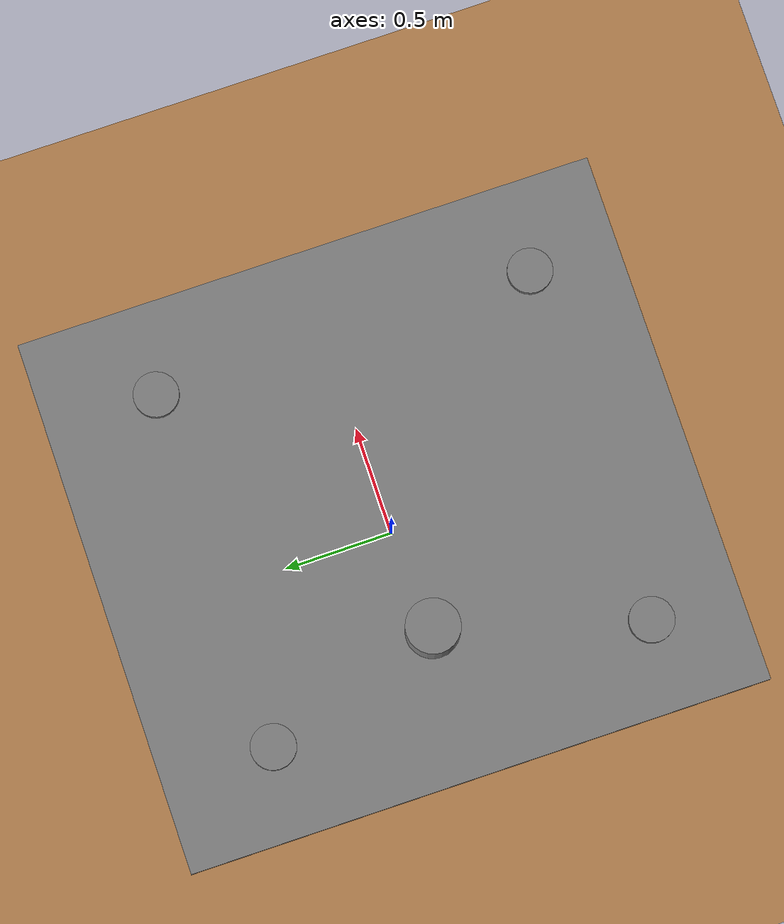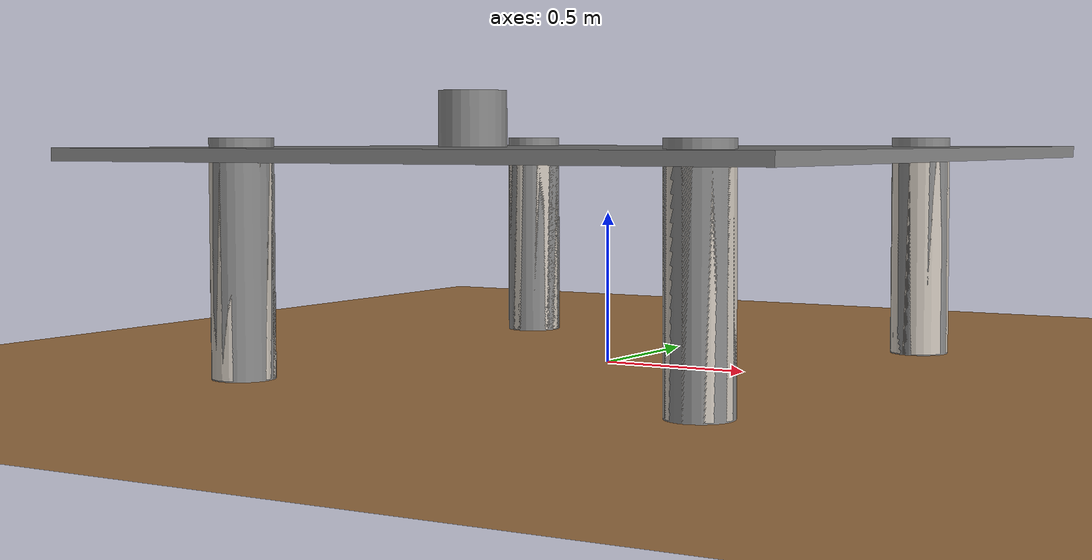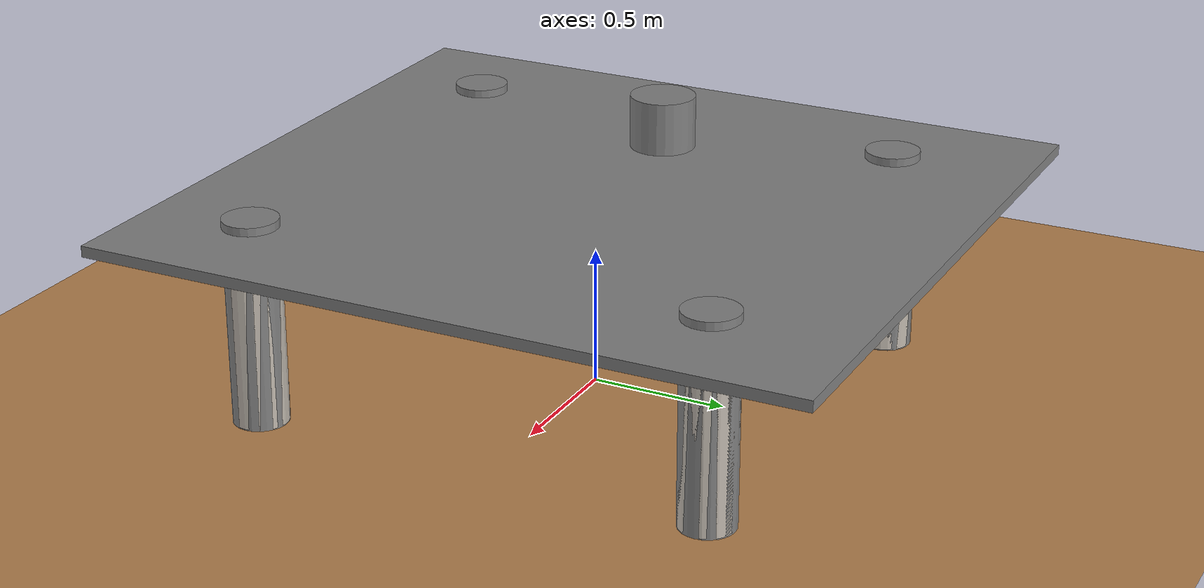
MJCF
<mujoco model="table_arena">
  <asset>
    <texture builtin="gradient" height="256" rgb1=".9 .9 1." rgb2=".2 .3 .4" type="skybox" width="256"/>
    <texture builtin="checker" height="512" name="texplane" rgb1=".2 .3 .4" rgb2=".1 0.15 0.2" type="2d" width="512"/>
    <texture file="../textures/light-wood.png" type="2d" name="tex-light-wood"/>
    <texture file="../textures/light-aluminum.png" type="2d" name="light-aluminum"/>
    <texture file="../textures/white-marble.png" type="2d" name="white-texture"/>
    <texture file="../textures/metal.png" type="2d" name="tex-dark-wood"/>
    <material name="light-wood" reflectance="0.5" texrepeat="15 15" texture="tex-light-wood" texuniform="true"/>
    <material name="aluminum" reflectance="1" texrepeat="15 15" texture="light-aluminum" texuniform="true"/>
    <material name="marble" reflectance="0.5" texrepeat="15 15" texture="white-texture" texuniform="true"/>
    <material name="metal" reflectance="0.5" texrepeat="5 5" texture="tex-dark-wood" texuniform="true"/>
    <material name="floorplane" reflectance="0.5" texrepeat="1 1" texture="tex-light-wood" texuniform="true"/>
  </asset>
  <worldbody>
    <geom condim="3" material="floorplane" name="floor" pos="0 0 0" size="3 3.2 .125" type="plane"/>
    <body name="table" pos="0 0 0.7">
      <geom pos="0 0 0" size="1.2, 1.3, 0.02" type="box" friction="1 0.005 0.0001" name="table_collision"/>
      <geom pos="0 0 0" material="marble" size="1.2, 1.3, 0.02" type="box" conaffinity="0" contype="0" group="1" name="table_view"/>
    </body>
    <body name="basecylinder" pos="0 0 0">
      <geom pos="-0.545 0 0.805" size="0.12 0.11" type="cylinder" friction="1 0.005 0.0001" name="basecylinder_collision"/>
      <geom pos="-0.545 0 0.805" material="marble" size="0.12 0.11" type="cylinder" conaffinity="0" contype="0" group="1"/>
    </body>
    <body name="table_legs" pos="0 0 0">
      <geom pos="-0.8 0.8 0.35" size="0.1  0.4" type="cylinder" friction="1 0.005 0.0001" name="leg1_collision"/>
      <geom pos="-0.8 0.8 0.35" material="metal" size="0.1 0.35" type="cylinder" conaffinity="0" contype="0" group="1" name="leg1"/>
      <geom pos="0.8 0.8 0.35" size="0.1 0.4" type="cylinder" friction="1 0.005 0.0001" name="leg2_collision"/>
      <geom pos="0.8 0.8 0.35" material="metal" size="0.1  0.35" type="cylinder" conaffinity="0" contype="0" group="1" name="leg2"/>
      <geom pos="-0.8 -0.9 0.35" size="0.1  0.4" type="cylinder" friction="1 0.005 0.0001" name="leg3_collision"/>
      <geom pos="-0.8 -0.9 0.35" material="metal" size="0.1  0.35" type="cylinder" conaffinity="0" contype="0" group="1" name="leg3"/>
      <geom pos="0.8 -0.9 0.35" size="0.1  0.4" type="cylinder" friction="1 0.005 0.0001" name="leg4_collision"/>
      <geom pos="0.8 -0.9 0.35" material="metal" size="0.1  0.35" type="cylinder" conaffinity="0" contype="0" group="1" name="leg4"/>
    </body>
    <light diffuse=".8 .8 .8" dir="0 -.15 -1" directional="false" pos="1 1.5 4.0" specular="0.3 0.3 0.3" castshadow="false"/>
    <light diffuse=".8 .8 .8" dir="0 -.15 -1" directional="false" pos="-2. -0.5 4.0" specular="0.3 0.3 0.3" castshadow="false"/>
    <light diffuse=".8 .8 .8" dir="0 -.15 -1" directional="false" pos="-2. 1.5 4.0" specular="0.3 0.3 0.3" castshadow="false"/>
    <light diffuse=".8 .8 .8" dir="0 -.15 -1" directional="false" pos="1 -0.5 4.0" specular="0.3 0.3 0.3" castshadow="false"/>
  </worldbody>
</mujoco>
